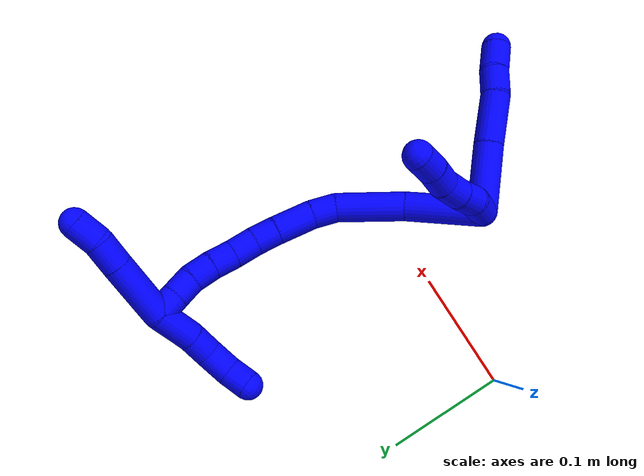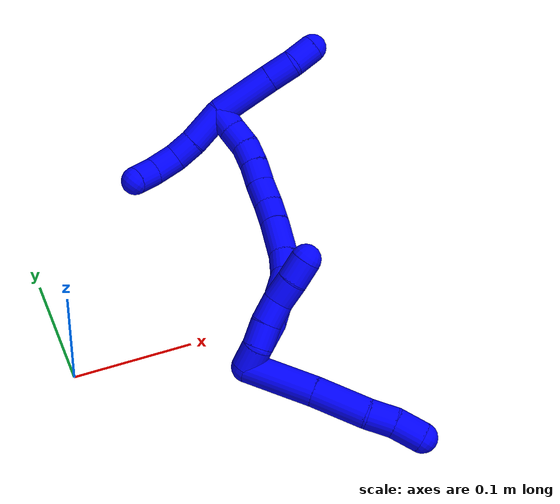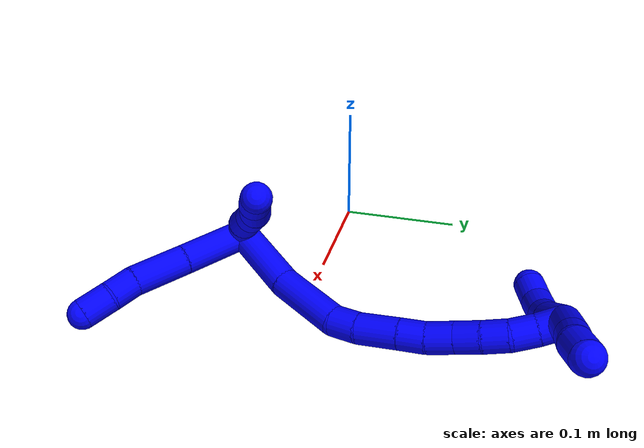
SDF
<sdf version="1.7">
 <world name="default">
  <model name="1">
   <static>0</static>
   <link name="1">
    <collision name="collision-cylinder-e_1_2_8">
     <pose>0.016412 -0.02162 0.009322 1.16372 0.608759 0.407567</pose>
     <geometry><cylinder><radius>0.0125</radius><length>0.057399</length></cylinder></geometry>
     <surface>
      <friction><ode><mu>1.16</mu><mu2>1.16</mu2><slip1>0</slip1><slip2>0</slip2></ode></friction>
      <contact><ode><kp>1e+06</kp><kd>1</kd><max_vel>0</max_vel><min_depth>0.001</min_depth></ode></contact>
     </surface>
    </collision>
    <visual name="visual-cylinder-e_1_2_8">
     <pose>0.016412 -0.02162 0.009322 1.16372 0.608759 0.407567</pose>
     <geometry><cylinder><radius>0.0125</radius><length>0.057399</length></cylinder></geometry>
     <material><ambient>0 0 1 1</ambient></material>
    </visual>
    <collision name="collision-cylinder-e_2_8_9">
     <pose>0.04574 -0.060776 0.025019 1.22207 0.605502 0.430795</pose>
     <geometry><cylinder><radius>0.0125</radius><length>0.045388</length></cylinder></geometry>
     <surface>
      <friction><ode><mu>1.16</mu><mu2>1.16</mu2><slip1>0</slip1><slip2>0</slip2></ode></friction>
      <contact><ode><kp>1e+06</kp><kd>1</kd><max_vel>0</max_vel><min_depth>0.001</min_depth></ode></contact>
     </surface>
    </collision>
    <visual name="visual-cylinder-e_2_8_9">
     <pose>0.04574 -0.060776 0.025019 1.22207 0.605502 0.430795</pose>
     <geometry><cylinder><radius>0.0125</radius><length>0.045388</length></cylinder></geometry>
     <material><ambient>0 0 1 1</ambient></material>
    </visual>
    <collision name="collision-cylinder-e_3_9_10">
     <pose>0.066463 -0.085505 0.0351 1.09515 0.767503 0.482811</pose>
     <geometry><cylinder><radius>0.0125</radius><length>0.022486</length></cylinder></geometry>
     <surface>
      <friction><ode><mu>1.16</mu><mu2>1.16</mu2><slip1>0</slip1><slip2>0</slip2></ode></friction>
      <contact><ode><kp>1e+06</kp><kd>1</kd><max_vel>0</max_vel><min_depth>0.001</min_depth></ode></contact>
     </surface>
    </collision>
    <visual name="visual-cylinder-e_3_9_10">
     <pose>0.066463 -0.085505 0.0351 1.09515 0.767503 0.482811</pose>
     <geometry><cylinder><radius>0.0125</radius><length>0.022486</length></cylinder></geometry>
     <material><ambient>0 0 1 1</ambient></material>
    </visual>
    <collision name="collision-cylinder-e_4_10_6">
     <pose>0.082904 -0.101327 0.040768 1.34711 0.773065 0.628127</pose>
     <geometry><cylinder><radius>0.0125</radius><length>0.024728</length></cylinder></geometry>
     <surface>
      <friction><ode><mu>1.16</mu><mu2>1.16</mu2><slip1>0</slip1><slip2>0</slip2></ode></friction>
      <contact><ode><kp>1e+06</kp><kd>1</kd><max_vel>0</max_vel><min_depth>0.001</min_depth></ode></contact>
     </surface>
    </collision>
    <visual name="visual-cylinder-e_4_10_6">
     <pose>0.082904 -0.101327 0.040768 1.34711 0.773065 0.628127</pose>
     <geometry><cylinder><radius>0.0125</radius><length>0.024728</length></cylinder></geometry>
     <material><ambient>0 0 1 1</ambient></material>
    </visual>
    <collision name="collision-cylinder-e_1_2_11">
     <pose>-0.002845 -0.000403 0.009578 0.042101 -0.288525 -0.006117</pose>
     <geometry><cylinder><radius>0.0125</radius><length>0.02</length></cylinder></geometry>
     <surface>
      <friction><ode><mu>1.16</mu><mu2>1.16</mu2><slip1>0</slip1><slip2>0</slip2></ode></friction>
      <contact><ode><kp>1e+06</kp><kd>1</kd><max_vel>0</max_vel><min_depth>0.001</min_depth></ode></contact>
     </surface>
    </collision>
    <visual name="visual-cylinder-e_1_2_11">
     <pose>-0.002845 -0.000403 0.009578 0.042101 -0.288525 -0.006117</pose>
     <geometry><cylinder><radius>0.0125</radius><length>0.02</length></cylinder></geometry>
     <material><ambient>0 0 1 1</ambient></material>
    </visual>
    <collision name="collision-cylinder-e_2_11_12">
     <pose>-0.007285 0.001848 0.028665 -0.272276 -0.16007 0.021973</pose>
     <geometry><cylinder><radius>0.0125</radius><length>0.02</length></cylinder></geometry>
     <surface>
      <friction><ode><mu>1.16</mu><mu2>1.16</mu2><slip1>0</slip1><slip2>0</slip2></ode></friction>
      <contact><ode><kp>1e+06</kp><kd>1</kd><max_vel>0</max_vel><min_depth>0.001</min_depth></ode></contact>
     </surface>
    </collision>
    <visual name="visual-cylinder-e_2_11_12">
     <pose>-0.007285 0.001848 0.028665 -0.272276 -0.16007 0.021973</pose>
     <geometry><cylinder><radius>0.0125</radius><length>0.02</length></cylinder></geometry>
     <material><ambient>0 0 1 1</ambient></material>
    </visual>
    <collision name="collision-cylinder-e_3_12_13">
     <pose>-0.00951 0.006184 0.048011 -0.169308 -0.063163 0.005362</pose>
     <geometry><cylinder><radius>0.0125</radius><length>0.02</length></cylinder></geometry>
     <surface>
      <friction><ode><mu>1.16</mu><mu2>1.16</mu2><slip1>0</slip1><slip2>0</slip2></ode></friction>
      <contact><ode><kp>1e+06</kp><kd>1</kd><max_vel>0</max_vel><min_depth>0.001</min_depth></ode></contact>
     </surface>
    </collision>
    <visual name="visual-cylinder-e_3_12_13">
     <pose>-0.00951 0.006184 0.048011 -0.169308 -0.063163 0.005362</pose>
     <geometry><cylinder><radius>0.0125</radius><length>0.02</length></cylinder></geometry>
     <material><ambient>0 0 1 1</ambient></material>
    </visual>
    <collision name="collision-cylinder-e_4_13_14">
     <pose>-0.011485 0.007234 0.067737 0.063818 -0.134791 -0.004309</pose>
     <geometry><cylinder><radius>0.0125</radius><length>0.02</length></cylinder></geometry>
     <surface>
      <friction><ode><mu>1.16</mu><mu2>1.16</mu2><slip1>0</slip1><slip2>0</slip2></ode></friction>
      <contact><ode><kp>1e+06</kp><kd>1</kd><max_vel>0</max_vel><min_depth>0.001</min_depth></ode></contact>
     </surface>
    </collision>
    <visual name="visual-cylinder-e_4_13_14">
     <pose>-0.011485 0.007234 0.067737 0.063818 -0.134791 -0.004309</pose>
     <geometry><cylinder><radius>0.0125</radius><length>0.02</length></cylinder></geometry>
     <material><ambient>0 0 1 1</ambient></material>
    </visual>
    <collision name="collision-cylinder-e_5_14_5">
     <pose>-0.013739 0.007001 0.087577 -0.040034 -0.091123 0.001826</pose>
     <geometry><cylinder><radius>0.0125</radius><length>0.02</length></cylinder></geometry>
     <surface>
      <friction><ode><mu>1.16</mu><mu2>1.16</mu2><slip1>0</slip1><slip2>0</slip2></ode></friction>
      <contact><ode><kp>1e+06</kp><kd>1</kd><max_vel>0</max_vel><min_depth>0.001</min_depth></ode></contact>
     </surface>
    </collision>
    <visual name="visual-cylinder-e_5_14_5">
     <pose>-0.013739 0.007001 0.087577 -0.040034 -0.091123 0.001826</pose>
     <geometry><cylinder><radius>0.0125</radius><length>0.02</length></cylinder></geometry>
     <material><ambient>0 0 1 1</ambient></material>
    </visual>
    <collision name="collision-cylinder-e_1_2_15">
     <pose>0.018682 0.020752 0.015413 -0.931985 0.625825 -0.322613</pose>
     <geometry><cylinder><radius>0.0125</radius><length>0.063788</length></cylinder></geometry>
     <surface>
      <friction><ode><mu>1.16</mu><mu2>1.16</mu2><slip1>0</slip1><slip2>0</slip2></ode></friction>
      <contact><ode><kp>1e+06</kp><kd>1</kd><max_vel>0</max_vel><min_depth>0.001</min_depth></ode></contact>
     </surface>
    </collision>
    <visual name="visual-cylinder-e_1_2_15">
     <pose>0.018682 0.020752 0.015413 -0.931985 0.625825 -0.322613</pose>
     <geometry><cylinder><radius>0.0125</radius><length>0.063788</length></cylinder></geometry>
     <material><ambient>0 0 1 1</ambient></material>
    </visual>
    <collision name="collision-cylinder-e_2_15_16">
     <pose>0.050063 0.062688 0.046645 -0.929354 0.447755 -0.227297</pose>
     <geometry><cylinder><radius>0.0125</radius><length>0.058662</length></cylinder></geometry>
     <surface>
      <friction><ode><mu>1.16</mu><mu2>1.16</mu2><slip1>0</slip1><slip2>0</slip2></ode></friction>
      <contact><ode><kp>1e+06</kp><kd>1</kd><max_vel>0</max_vel><min_depth>0.001</min_depth></ode></contact>
     </surface>
    </collision>
    <visual name="visual-cylinder-e_2_15_16">
     <pose>0.050063 0.062688 0.046645 -0.929354 0.447755 -0.227297</pose>
     <geometry><cylinder><radius>0.0125</radius><length>0.058662</length></cylinder></geometry>
     <material><ambient>0 0 1 1</ambient></material>
    </visual>
    <collision name="collision-cylinder-e_3_16_17">
     <pose>0.064281 0.093185 0.067785 -1.0518 0.140708 -0.08176</pose>
     <geometry><cylinder><radius>0.0125</radius><length>0.021663</length></cylinder></geometry>
     <surface>
      <friction><ode><mu>1.16</mu><mu2>1.16</mu2><slip1>0</slip1><slip2>0</slip2></ode></friction>
      <contact><ode><kp>1e+06</kp><kd>1</kd><max_vel>0</max_vel><min_depth>0.001</min_depth></ode></contact>
     </surface>
    </collision>
    <visual name="visual-cylinder-e_3_16_17">
     <pose>0.064281 0.093185 0.067785 -1.0518 0.140708 -0.08176</pose>
     <geometry><cylinder><radius>0.0125</radius><length>0.021663</length></cylinder></geometry>
     <material><ambient>0 0 1 1</ambient></material>
    </visual>
    <collision name="collision-cylinder-e_4_17_18">
     <pose>0.065601 0.117462 0.080258 -1.12486 -0.012003 0.007566</pose>
     <geometry><cylinder><radius>0.0125</radius><length>0.033175</length></cylinder></geometry>
     <surface>
      <friction><ode><mu>1.16</mu><mu2>1.16</mu2><slip1>0</slip1><slip2>0</slip2></ode></friction>
      <contact><ode><kp>1e+06</kp><kd>1</kd><max_vel>0</max_vel><min_depth>0.001</min_depth></ode></contact>
     </surface>
    </collision>
    <visual name="visual-cylinder-e_4_17_18">
     <pose>0.065601 0.117462 0.080258 -1.12486 -0.012003 0.007566</pose>
     <geometry><cylinder><radius>0.0125</radius><length>0.033175</length></cylinder></geometry>
     <material><ambient>0 0 1 1</ambient></material>
    </visual>
    <collision name="collision-cylinder-e_5_18_19">
     <pose>0.065372 0.142043 0.091404 -1.1773 -0.002821 0.001883</pose>
     <geometry><cylinder><radius>0.0125</radius><length>0.020826</length></cylinder></geometry>
     <surface>
      <friction><ode><mu>1.16</mu><mu2>1.16</mu2><slip1>0</slip1><slip2>0</slip2></ode></friction>
      <contact><ode><kp>1e+06</kp><kd>1</kd><max_vel>0</max_vel><min_depth>0.001</min_depth></ode></contact>
     </surface>
    </collision>
    <visual name="visual-cylinder-e_5_18_19">
     <pose>0.065372 0.142043 0.091404 -1.1773 -0.002821 0.001883</pose>
     <geometry><cylinder><radius>0.0125</radius><length>0.020826</length></cylinder></geometry>
     <material><ambient>0 0 1 1</ambient></material>
    </visual>
    <collision name="collision-cylinder-e_6_19_20">
     <pose>0.06359 0.161427 0.099667 -1.15867 -0.162989 0.106766</pose>
     <geometry><cylinder><radius>0.0125</radius><length>0.021606</length></cylinder></geometry>
     <surface>
      <friction><ode><mu>1.16</mu><mu2>1.16</mu2><slip1>0</slip1><slip2>0</slip2></ode></friction>
      <contact><ode><kp>1e+06</kp><kd>1</kd><max_vel>0</max_vel><min_depth>0.001</min_depth></ode></contact>
     </surface>
    </collision>
    <visual name="visual-cylinder-e_6_19_20">
     <pose>0.06359 0.161427 0.099667 -1.15867 -0.162989 0.106766</pose>
     <geometry><cylinder><radius>0.0125</radius><length>0.021606</length></cylinder></geometry>
     <material><ambient>0 0 1 1</ambient></material>
    </visual>
    <collision name="collision-cylinder-e_7_20_21">
     <pose>0.060268 0.180012 0.108525 -1.09098 -0.156553 0.095138</pose>
     <geometry><cylinder><radius>0.0125</radius><length>0.020125</length></cylinder></geometry>
     <surface>
      <friction><ode><mu>1.16</mu><mu2>1.16</mu2><slip1>0</slip1><slip2>0</slip2></ode></friction>
      <contact><ode><kp>1e+06</kp><kd>1</kd><max_vel>0</max_vel><min_depth>0.001</min_depth></ode></contact>
     </surface>
    </collision>
    <visual name="visual-cylinder-e_7_20_21">
     <pose>0.060268 0.180012 0.108525 -1.09098 -0.156553 0.095138</pose>
     <geometry><cylinder><radius>0.0125</radius><length>0.020125</length></cylinder></geometry>
     <material><ambient>0 0 1 1</ambient></material>
    </visual>
    <collision name="collision-cylinder-e_8_21_22">
     <pose>0.05659 0.197919 0.116836 -1.18205 -0.211513 0.142226</pose>
     <geometry><cylinder><radius>0.0125</radius><length>0.020094</length></cylinder></geometry>
     <surface>
      <friction><ode><mu>1.16</mu><mu2>1.16</mu2><slip1>0</slip1><slip2>0</slip2></ode></friction>
      <contact><ode><kp>1e+06</kp><kd>1</kd><max_vel>0</max_vel><min_depth>0.001</min_depth></ode></contact>
     </surface>
    </collision>
    <visual name="visual-cylinder-e_8_21_22">
     <pose>0.05659 0.197919 0.116836 -1.18205 -0.211513 0.142226</pose>
     <geometry><cylinder><radius>0.0125</radius><length>0.020094</length></cylinder></geometry>
     <material><ambient>0 0 1 1</ambient></material>
    </visual>
    <collision name="collision-cylinder-e_9_22_23">
     <pose>0.050852 0.216159 0.122406 -1.37163 -0.370813 0.304593</pose>
     <geometry><cylinder><radius>0.0125</radius><length>0.020029</length></cylinder></geometry>
     <surface>
      <friction><ode><mu>1.16</mu><mu2>1.16</mu2><slip1>0</slip1><slip2>0</slip2></ode></friction>
      <contact><ode><kp>1e+06</kp><kd>1</kd><max_vel>0</max_vel><min_depth>0.001</min_depth></ode></contact>
     </surface>
    </collision>
    <visual name="visual-cylinder-e_9_22_23">
     <pose>0.050852 0.216159 0.122406 -1.37163 -0.370813 0.304593</pose>
     <geometry><cylinder><radius>0.0125</radius><length>0.020029</length></cylinder></geometry>
     <material><ambient>0 0 1 1</ambient></material>
    </visual>
    <collision name="collision-cylinder-e_10_23_1">
     <pose>0.042845 0.233993 0.126646 -1.30195 -0.452333 0.347033</pose>
     <geometry><cylinder><radius>0.0125</radius><length>0.020032</length></cylinder></geometry>
     <surface>
      <friction><ode><mu>1.16</mu><mu2>1.16</mu2><slip1>0</slip1><slip2>0</slip2></ode></friction>
      <contact><ode><kp>1e+06</kp><kd>1</kd><max_vel>0</max_vel><min_depth>0.001</min_depth></ode></contact>
     </surface>
    </collision>
    <visual name="visual-cylinder-e_10_23_1">
     <pose>0.042845 0.233993 0.126646 -1.30195 -0.452333 0.347033</pose>
     <geometry><cylinder><radius>0.0125</radius><length>0.020032</length></cylinder></geometry>
     <material><ambient>0 0 1 1</ambient></material>
    </visual>
    <collision name="collision-cylinder-e_1_1_24">
     <pose>0.045434 0.237891 0.154224 0.187847 0.265343 0.025142</pose>
     <geometry><cylinder><radius>0.0125</radius><length>0.053132</length></cylinder></geometry>
     <surface>
      <friction><ode><mu>1.16</mu><mu2>1.16</mu2><slip1>0</slip1><slip2>0</slip2></ode></friction>
      <contact><ode><kp>1e+06</kp><kd>1</kd><max_vel>0</max_vel><min_depth>0.001</min_depth></ode></contact>
     </surface>
    </collision>
    <visual name="visual-cylinder-e_1_1_24">
     <pose>0.045434 0.237891 0.154224 0.187847 0.265343 0.025142</pose>
     <geometry><cylinder><radius>0.0125</radius><length>0.053132</length></cylinder></geometry>
     <material><ambient>0 0 1 1</ambient></material>
    </visual>
    <collision name="collision-cylinder-e_2_24_25">
     <pose>0.05571 0.230742 0.190642 0.20715 0.280666 0.029365</pose>
     <geometry><cylinder><radius>0.0125</radius><length>0.023892</length></cylinder></geometry>
     <surface>
      <friction><ode><mu>1.16</mu><mu2>1.16</mu2><slip1>0</slip1><slip2>0</slip2></ode></friction>
      <contact><ode><kp>1e+06</kp><kd>1</kd><max_vel>0</max_vel><min_depth>0.001</min_depth></ode></contact>
     </surface>
    </collision>
    <visual name="visual-cylinder-e_2_24_25">
     <pose>0.05571 0.230742 0.190642 0.20715 0.280666 0.029365</pose>
     <geometry><cylinder><radius>0.0125</radius><length>0.023892</length></cylinder></geometry>
     <material><ambient>0 0 1 1</ambient></material>
    </visual>
    <collision name="collision-cylinder-e_3_25_4">
     <pose>0.063764 0.229171 0.212308 -0.07552 0.425783 -0.016332</pose>
     <geometry><cylinder><radius>0.0125</radius><length>0.022977</length></cylinder></geometry>
     <surface>
      <friction><ode><mu>1.16</mu><mu2>1.16</mu2><slip1>0</slip1><slip2>0</slip2></ode></friction>
      <contact><ode><kp>1e+06</kp><kd>1</kd><max_vel>0</max_vel><min_depth>0.001</min_depth></ode></contact>
     </surface>
    </collision>
    <visual name="visual-cylinder-e_3_25_4">
     <pose>0.063764 0.229171 0.212308 -0.07552 0.425783 -0.016332</pose>
     <geometry><cylinder><radius>0.0125</radius><length>0.022977</length></cylinder></geometry>
     <material><ambient>0 0 1 1</ambient></material>
    </visual>
    <collision name="collision-cylinder-e_1_1_26">
     <pose>0.036109 0.24201 0.111768 3.10296 -0.13565 -2.58748</pose>
     <geometry><cylinder><radius>0.0125</radius><length>0.034888</length></cylinder></geometry>
     <surface>
      <friction><ode><mu>1.16</mu><mu2>1.16</mu2><slip1>0</slip1><slip2>0</slip2></ode></friction>
      <contact><ode><kp>1e+06</kp><kd>1</kd><max_vel>0</max_vel><min_depth>0.001</min_depth></ode></contact>
     </surface>
    </collision>
    <visual name="visual-cylinder-e_1_1_26">
     <pose>0.036109 0.24201 0.111768 3.10296 -0.13565 -2.58748</pose>
     <geometry><cylinder><radius>0.0125</radius><length>0.034888</length></cylinder></geometry>
     <material><ambient>0 0 1 1</ambient></material>
    </visual>
    <collision name="collision-cylinder-e_2_26_27">
     <pose>0.031516 0.242135 0.084342 -3.06377 -0.215872 2.45171</pose>
     <geometry><cylinder><radius>0.0125</radius><length>0.020855</length></cylinder></geometry>
     <surface>
      <friction><ode><mu>1.16</mu><mu2>1.16</mu2><slip1>0</slip1><slip2>0</slip2></ode></friction>
      <contact><ode><kp>1e+06</kp><kd>1</kd><max_vel>0</max_vel><min_depth>0.001</min_depth></ode></contact>
     </surface>
    </collision>
    <visual name="visual-cylinder-e_2_26_27">
     <pose>0.031516 0.242135 0.084342 -3.06377 -0.215872 2.45171</pose>
     <geometry><cylinder><radius>0.0125</radius><length>0.020855</length></cylinder></geometry>
     <material><ambient>0 0 1 1</ambient></material>
    </visual>
    <collision name="collision-cylinder-e_3_27_28">
     <pose>0.023443 0.242539 0.063792 3.10431 -0.511513 -2.99923</pose>
     <geometry><cylinder><radius>0.0125</radius><length>0.02386</length></cylinder></geometry>
     <surface>
      <friction><ode><mu>1.16</mu><mu2>1.16</mu2><slip1>0</slip1><slip2>0</slip2></ode></friction>
      <contact><ode><kp>1e+06</kp><kd>1</kd><max_vel>0</max_vel><min_depth>0.001</min_depth></ode></contact>
     </surface>
    </collision>
    <visual name="visual-cylinder-e_3_27_28">
     <pose>0.023443 0.242539 0.063792 3.10431 -0.511513 -2.99923</pose>
     <geometry><cylinder><radius>0.0125</radius><length>0.02386</length></cylinder></geometry>
     <material><ambient>0 0 1 1</ambient></material>
    </visual>
    <collision name="collision-cylinder-e_4_28_3">
     <pose>0.010447 0.240072 0.046433 2.8514 -0.777742 -2.45646</pose>
     <geometry><cylinder><radius>0.0125</radius><length>0.020397</length></cylinder></geometry>
     <surface>
      <friction><ode><mu>1.16</mu><mu2>1.16</mu2><slip1>0</slip1><slip2>0</slip2></ode></friction>
      <contact><ode><kp>1e+06</kp><kd>1</kd><max_vel>0</max_vel><min_depth>0.001</min_depth></ode></contact>
     </surface>
    </collision>
    <visual name="visual-cylinder-e_4_28_3">
     <pose>0.010447 0.240072 0.046433 2.8514 -0.777742 -2.45646</pose>
     <geometry><cylinder><radius>0.0125</radius><length>0.020397</length></cylinder></geometry>
     <material><ambient>0 0 1 1</ambient></material>
    </visual>
    <collision name="collision-sphere-3">
     <pose>0.003291 0.237993 0.039471 0 -0 0</pose>
     <geometry><sphere><radius>0.0125</radius></sphere></geometry>
     <surface>
      <friction><ode><mu>1.16</mu><mu2>1.16</mu2><slip1>0</slip1><slip2>0</slip2></ode></friction>
      <contact><ode><kp>1e+06</kp><kd>1</kd><max_vel>0</max_vel><min_depth>0.001</min_depth></ode></contact>
     </surface>
    </collision>
    <visual name="visual-sphere-3">
     <pose>0.003291 0.237993 0.039471 0 -0 0</pose>
     <geometry><sphere><radius>0.0125</radius></sphere></geometry>
     <material><ambient>0 0 1 1</ambient></material>
    </visual>
    <collision name="collision-sphere-28">
     <pose>0.017603 0.242151 0.053396 0 -0 0</pose>
     <geometry><sphere><radius>0.0125</radius></sphere></geometry>
     <surface>
      <friction><ode><mu>1.16</mu><mu2>1.16</mu2><slip1>0</slip1><slip2>0</slip2></ode></friction>
      <contact><ode><kp>1e+06</kp><kd>1</kd><max_vel>0</max_vel><min_depth>0.001</min_depth></ode></contact>
     </surface>
    </collision>
    <visual name="visual-sphere-28">
     <pose>0.017603 0.242151 0.053396 0 -0 0</pose>
     <geometry><sphere><radius>0.0125</radius></sphere></geometry>
     <material><ambient>0 0 1 1</ambient></material>
    </visual>
    <collision name="collision-sphere-27">
     <pose>0.029282 0.242927 0.074188 0 -0 0</pose>
     <geometry><sphere><radius>0.0125</radius></sphere></geometry>
     <surface>
      <friction><ode><mu>1.16</mu><mu2>1.16</mu2><slip1>0</slip1><slip2>0</slip2></ode></friction>
      <contact><ode><kp>1e+06</kp><kd>1</kd><max_vel>0</max_vel><min_depth>0.001</min_depth></ode></contact>
     </surface>
    </collision>
    <visual name="visual-sphere-27">
     <pose>0.029282 0.242927 0.074188 0 -0 0</pose>
     <geometry><sphere><radius>0.0125</radius></sphere></geometry>
     <material><ambient>0 0 1 1</ambient></material>
    </visual>
    <collision name="collision-sphere-26">
     <pose>0.03375 0.241343 0.094497 0 -0 0</pose>
     <geometry><sphere><radius>0.0125</radius></sphere></geometry>
     <surface>
      <friction><ode><mu>1.16</mu><mu2>1.16</mu2><slip1>0</slip1><slip2>0</slip2></ode></friction>
      <contact><ode><kp>1e+06</kp><kd>1</kd><max_vel>0</max_vel><min_depth>0.001</min_depth></ode></contact>
     </surface>
    </collision>
    <visual name="visual-sphere-26">
     <pose>0.03375 0.241343 0.094497 0 -0 0</pose>
     <geometry><sphere><radius>0.0125</radius></sphere></geometry>
     <material><ambient>0 0 1 1</ambient></material>
    </visual>
    <collision name="collision-sphere-4">
     <pose>0.068509 0.22996 0.222741 0 -0 0</pose>
     <geometry><sphere><radius>0.0125</radius></sphere></geometry>
     <surface>
      <friction><ode><mu>1.16</mu><mu2>1.16</mu2><slip1>0</slip1><slip2>0</slip2></ode></friction>
      <contact><ode><kp>1e+06</kp><kd>1</kd><max_vel>0</max_vel><min_depth>0.001</min_depth></ode></contact>
     </surface>
    </collision>
    <visual name="visual-sphere-4">
     <pose>0.068509 0.22996 0.222741 0 -0 0</pose>
     <geometry><sphere><radius>0.0125</radius></sphere></geometry>
     <material><ambient>0 0 1 1</ambient></material>
    </visual>
    <collision name="collision-sphere-25">
     <pose>0.059019 0.228382 0.201875 0 -0 0</pose>
     <geometry><sphere><radius>0.0125</radius></sphere></geometry>
     <surface>
      <friction><ode><mu>1.16</mu><mu2>1.16</mu2><slip1>0</slip1><slip2>0</slip2></ode></friction>
      <contact><ode><kp>1e+06</kp><kd>1</kd><max_vel>0</max_vel><min_depth>0.001</min_depth></ode></contact>
     </surface>
    </collision>
    <visual name="visual-sphere-25">
     <pose>0.059019 0.228382 0.201875 0 -0 0</pose>
     <geometry><sphere><radius>0.0125</radius></sphere></geometry>
     <material><ambient>0 0 1 1</ambient></material>
    </visual>
    <collision name="collision-sphere-24">
     <pose>0.052401 0.233103 0.179409 0 -0 0</pose>
     <geometry><sphere><radius>0.0125</radius></sphere></geometry>
     <surface>
      <friction><ode><mu>1.16</mu><mu2>1.16</mu2><slip1>0</slip1><slip2>0</slip2></ode></friction>
      <contact><ode><kp>1e+06</kp><kd>1</kd><max_vel>0</max_vel><min_depth>0.001</min_depth></ode></contact>
     </surface>
    </collision>
    <visual name="visual-sphere-24">
     <pose>0.052401 0.233103 0.179409 0 -0 0</pose>
     <geometry><sphere><radius>0.0125</radius></sphere></geometry>
     <material><ambient>0 0 1 1</ambient></material>
    </visual>
    <collision name="collision-sphere-1">
     <pose>0.038468 0.242678 0.129039 0 -0 0</pose>
     <geometry><sphere><radius>0.0125</radius></sphere></geometry>
     <surface>
      <friction><ode><mu>1.16</mu><mu2>1.16</mu2><slip1>0</slip1><slip2>0</slip2></ode></friction>
      <contact><ode><kp>1e+06</kp><kd>1</kd><max_vel>0</max_vel><min_depth>0.001</min_depth></ode></contact>
     </surface>
    </collision>
    <visual name="visual-sphere-1">
     <pose>0.038468 0.242678 0.129039 0 -0 0</pose>
     <geometry><sphere><radius>0.0125</radius></sphere></geometry>
     <material><ambient>0 0 1 1</ambient></material>
    </visual>
    <collision name="collision-sphere-23">
     <pose>0.047223 0.225308 0.124253 0 -0 0</pose>
     <geometry><sphere><radius>0.0125</radius></sphere></geometry>
     <surface>
      <friction><ode><mu>1.16</mu><mu2>1.16</mu2><slip1>0</slip1><slip2>0</slip2></ode></friction>
      <contact><ode><kp>1e+06</kp><kd>1</kd><max_vel>0</max_vel><min_depth>0.001</min_depth></ode></contact>
     </surface>
    </collision>
    <visual name="visual-sphere-23">
     <pose>0.047223 0.225308 0.124253 0 -0 0</pose>
     <geometry><sphere><radius>0.0125</radius></sphere></geometry>
     <material><ambient>0 0 1 1</ambient></material>
    </visual>
    <collision name="collision-sphere-22">
     <pose>0.054481 0.207009 0.120559 0 -0 0</pose>
     <geometry><sphere><radius>0.0125</radius></sphere></geometry>
     <surface>
      <friction><ode><mu>1.16</mu><mu2>1.16</mu2><slip1>0</slip1><slip2>0</slip2></ode></friction>
      <contact><ode><kp>1e+06</kp><kd>1</kd><max_vel>0</max_vel><min_depth>0.001</min_depth></ode></contact>
     </surface>
    </collision>
    <visual name="visual-sphere-22">
     <pose>0.054481 0.207009 0.120559 0 -0 0</pose>
     <geometry><sphere><radius>0.0125</radius></sphere></geometry>
     <material><ambient>0 0 1 1</ambient></material>
    </visual>
    <collision name="collision-sphere-21">
     <pose>0.058699 0.188829 0.113113 0 -0 0</pose>
     <geometry><sphere><radius>0.0125</radius></sphere></geometry>
     <surface>
      <friction><ode><mu>1.16</mu><mu2>1.16</mu2><slip1>0</slip1><slip2>0</slip2></ode></friction>
      <contact><ode><kp>1e+06</kp><kd>1</kd><max_vel>0</max_vel><min_depth>0.001</min_depth></ode></contact>
     </surface>
    </collision>
    <visual name="visual-sphere-21">
     <pose>0.058699 0.188829 0.113113 0 -0 0</pose>
     <geometry><sphere><radius>0.0125</radius></sphere></geometry>
     <material><ambient>0 0 1 1</ambient></material>
    </visual>
    <collision name="collision-sphere-11">
     <pose>-0.005691 -0.000807 0.019156 0 -0 0</pose>
     <geometry><sphere><radius>0.0125</radius></sphere></geometry>
     <surface>
      <friction><ode><mu>1.16</mu><mu2>1.16</mu2><slip1>0</slip1><slip2>0</slip2></ode></friction>
      <contact><ode><kp>1e+06</kp><kd>1</kd><max_vel>0</max_vel><min_depth>0.001</min_depth></ode></contact>
     </surface>
    </collision>
    <visual name="visual-sphere-11">
     <pose>-0.005691 -0.000807 0.019156 0 -0 0</pose>
     <geometry><sphere><radius>0.0125</radius></sphere></geometry>
     <material><ambient>0 0 1 1</ambient></material>
    </visual>
    <collision name="collision-sphere-6">
     <pose>0.091538 -0.109956 0.042731 0 -0 0</pose>
     <geometry><sphere><radius>0.0125</radius></sphere></geometry>
     <surface>
      <friction><ode><mu>1.16</mu><mu2>1.16</mu2><slip1>0</slip1><slip2>0</slip2></ode></friction>
      <contact><ode><kp>1e+06</kp><kd>1</kd><max_vel>0</max_vel><min_depth>0.001</min_depth></ode></contact>
     </surface>
    </collision>
    <visual name="visual-sphere-6">
     <pose>0.091538 -0.109956 0.042731 0 -0 0</pose>
     <geometry><sphere><radius>0.0125</radius></sphere></geometry>
     <material><ambient>0 0 1 1</ambient></material>
    </visual>
    <collision name="collision-sphere-10">
     <pose>0.07427 -0.092697 0.038805 0 -0 0</pose>
     <geometry><sphere><radius>0.0125</radius></sphere></geometry>
     <surface>
      <friction><ode><mu>1.16</mu><mu2>1.16</mu2><slip1>0</slip1><slip2>0</slip2></ode></friction>
      <contact><ode><kp>1e+06</kp><kd>1</kd><max_vel>0</max_vel><min_depth>0.001</min_depth></ode></contact>
     </surface>
    </collision>
    <visual name="visual-sphere-10">
     <pose>0.07427 -0.092697 0.038805 0 -0 0</pose>
     <geometry><sphere><radius>0.0125</radius></sphere></geometry>
     <material><ambient>0 0 1 1</ambient></material>
    </visual>
    <collision name="collision-sphere-9">
     <pose>0.058657 -0.078312 0.031395 0 -0 0</pose>
     <geometry><sphere><radius>0.0125</radius></sphere></geometry>
     <surface>
      <friction><ode><mu>1.16</mu><mu2>1.16</mu2><slip1>0</slip1><slip2>0</slip2></ode></friction>
      <contact><ode><kp>1e+06</kp><kd>1</kd><max_vel>0</max_vel><min_depth>0.001</min_depth></ode></contact>
     </surface>
    </collision>
    <visual name="visual-sphere-9">
     <pose>0.058657 -0.078312 0.031395 0 -0 0</pose>
     <geometry><sphere><radius>0.0125</radius></sphere></geometry>
     <material><ambient>0 0 1 1</ambient></material>
    </visual>
    <collision name="collision-sphere-2">
     <geometry><sphere><radius>0.0125</radius></sphere></geometry>
     <surface>
      <friction><ode><mu>1.16</mu><mu2>1.16</mu2><slip1>0</slip1><slip2>0</slip2></ode></friction>
      <contact><ode><kp>1e+06</kp><kd>1</kd><max_vel>0</max_vel><min_depth>0.001</min_depth></ode></contact>
     </surface>
    </collision>
    <visual name="visual-sphere-2">
     <geometry><sphere><radius>0.0125</radius></sphere></geometry>
     <material><ambient>0 0 1 1</ambient></material>
    </visual>
    <collision name="collision-sphere-19">
     <pose>0.065343 0.15166 0.095397 0 -0 0</pose>
     <geometry><sphere><radius>0.0125</radius></sphere></geometry>
     <surface>
      <friction><ode><mu>1.16</mu><mu2>1.16</mu2><slip1>0</slip1><slip2>0</slip2></ode></friction>
      <contact><ode><kp>1e+06</kp><kd>1</kd><max_vel>0</max_vel><min_depth>0.001</min_depth></ode></contact>
     </surface>
    </collision>
    <visual name="visual-sphere-19">
     <pose>0.065343 0.15166 0.095397 0 -0 0</pose>
     <geometry><sphere><radius>0.0125</radius></sphere></geometry>
     <material><ambient>0 0 1 1</ambient></material>
    </visual>
    <collision name="collision-sphere-8">
     <pose>0.032823 -0.04324 0.018643 0 -0 0</pose>
     <geometry><sphere><radius>0.0125</radius></sphere></geometry>
     <surface>
      <friction><ode><mu>1.16</mu><mu2>1.16</mu2><slip1>0</slip1><slip2>0</slip2></ode></friction>
      <contact><ode><kp>1e+06</kp><kd>1</kd><max_vel>0</max_vel><min_depth>0.001</min_depth></ode></contact>
     </surface>
    </collision>
    <visual name="visual-sphere-8">
     <pose>0.032823 -0.04324 0.018643 0 -0 0</pose>
     <geometry><sphere><radius>0.0125</radius></sphere></geometry>
     <material><ambient>0 0 1 1</ambient></material>
    </visual>
    <collision name="collision-sphere-12">
     <pose>-0.008879 0.004503 0.038173 0 -0 0</pose>
     <geometry><sphere><radius>0.0125</radius></sphere></geometry>
     <surface>
      <friction><ode><mu>1.16</mu><mu2>1.16</mu2><slip1>0</slip1><slip2>0</slip2></ode></friction>
      <contact><ode><kp>1e+06</kp><kd>1</kd><max_vel>0</max_vel><min_depth>0.001</min_depth></ode></contact>
     </surface>
    </collision>
    <visual name="visual-sphere-12">
     <pose>-0.008879 0.004503 0.038173 0 -0 0</pose>
     <geometry><sphere><radius>0.0125</radius></sphere></geometry>
     <material><ambient>0 0 1 1</ambient></material>
    </visual>
    <collision name="collision-sphere-13">
     <pose>-0.010141 0.007866 0.057848 0 -0 0</pose>
     <geometry><sphere><radius>0.0125</radius></sphere></geometry>
     <surface>
      <friction><ode><mu>1.16</mu><mu2>1.16</mu2><slip1>0</slip1><slip2>0</slip2></ode></friction>
      <contact><ode><kp>1e+06</kp><kd>1</kd><max_vel>0</max_vel><min_depth>0.001</min_depth></ode></contact>
     </surface>
    </collision>
    <visual name="visual-sphere-13">
     <pose>-0.010141 0.007866 0.057848 0 -0 0</pose>
     <geometry><sphere><radius>0.0125</radius></sphere></geometry>
     <material><ambient>0 0 1 1</ambient></material>
    </visual>
    <collision name="collision-sphere-14">
     <pose>-0.012829 0.006602 0.077626 0 -0 0</pose>
     <geometry><sphere><radius>0.0125</radius></sphere></geometry>
     <surface>
      <friction><ode><mu>1.16</mu><mu2>1.16</mu2><slip1>0</slip1><slip2>0</slip2></ode></friction>
      <contact><ode><kp>1e+06</kp><kd>1</kd><max_vel>0</max_vel><min_depth>0.001</min_depth></ode></contact>
     </surface>
    </collision>
    <visual name="visual-sphere-14">
     <pose>-0.012829 0.006602 0.077626 0 -0 0</pose>
     <geometry><sphere><radius>0.0125</radius></sphere></geometry>
     <material><ambient>0 0 1 1</ambient></material>
    </visual>
    <collision name="collision-sphere-5">
     <pose>-0.014649 0.007399 0.097527 0 -0 0</pose>
     <geometry><sphere><radius>0.0125</radius></sphere></geometry>
     <surface>
      <friction><ode><mu>1.16</mu><mu2>1.16</mu2><slip1>0</slip1><slip2>0</slip2></ode></friction>
      <contact><ode><kp>1e+06</kp><kd>1</kd><max_vel>0</max_vel><min_depth>0.001</min_depth></ode></contact>
     </surface>
    </collision>
    <visual name="visual-sphere-5">
     <pose>-0.014649 0.007399 0.097527 0 -0 0</pose>
     <geometry><sphere><radius>0.0125</radius></sphere></geometry>
     <material><ambient>0 0 1 1</ambient></material>
    </visual>
    <collision name="collision-sphere-15">
     <pose>0.037365 0.041504 0.030825 0 -0 0</pose>
     <geometry><sphere><radius>0.0125</radius></sphere></geometry>
     <surface>
      <friction><ode><mu>1.16</mu><mu2>1.16</mu2><slip1>0</slip1><slip2>0</slip2></ode></friction>
      <contact><ode><kp>1e+06</kp><kd>1</kd><max_vel>0</max_vel><min_depth>0.001</min_depth></ode></contact>
     </surface>
    </collision>
    <visual name="visual-sphere-15">
     <pose>0.037365 0.041504 0.030825 0 -0 0</pose>
     <geometry><sphere><radius>0.0125</radius></sphere></geometry>
     <material><ambient>0 0 1 1</ambient></material>
    </visual>
    <collision name="collision-sphere-16">
     <pose>0.062762 0.083872 0.062465 0 -0 0</pose>
     <geometry><sphere><radius>0.0125</radius></sphere></geometry>
     <surface>
      <friction><ode><mu>1.16</mu><mu2>1.16</mu2><slip1>0</slip1><slip2>0</slip2></ode></friction>
      <contact><ode><kp>1e+06</kp><kd>1</kd><max_vel>0</max_vel><min_depth>0.001</min_depth></ode></contact>
     </surface>
    </collision>
    <visual name="visual-sphere-16">
     <pose>0.062762 0.083872 0.062465 0 -0 0</pose>
     <geometry><sphere><radius>0.0125</radius></sphere></geometry>
     <material><ambient>0 0 1 1</ambient></material>
    </visual>
    <collision name="collision-sphere-17">
     <pose>0.0658 0.102497 0.073104 0 -0 0</pose>
     <geometry><sphere><radius>0.0125</radius></sphere></geometry>
     <surface>
      <friction><ode><mu>1.16</mu><mu2>1.16</mu2><slip1>0</slip1><slip2>0</slip2></ode></friction>
      <contact><ode><kp>1e+06</kp><kd>1</kd><max_vel>0</max_vel><min_depth>0.001</min_depth></ode></contact>
     </surface>
    </collision>
    <visual name="visual-sphere-17">
     <pose>0.0658 0.102497 0.073104 0 -0 0</pose>
     <geometry><sphere><radius>0.0125</radius></sphere></geometry>
     <material><ambient>0 0 1 1</ambient></material>
    </visual>
    <collision name="collision-sphere-18">
     <pose>0.065402 0.132426 0.087412 0 -0 0</pose>
     <geometry><sphere><radius>0.0125</radius></sphere></geometry>
     <surface>
      <friction><ode><mu>1.16</mu><mu2>1.16</mu2><slip1>0</slip1><slip2>0</slip2></ode></friction>
      <contact><ode><kp>1e+06</kp><kd>1</kd><max_vel>0</max_vel><min_depth>0.001</min_depth></ode></contact>
     </surface>
    </collision>
    <visual name="visual-sphere-18">
     <pose>0.065402 0.132426 0.087412 0 -0 0</pose>
     <geometry><sphere><radius>0.0125</radius></sphere></geometry>
     <material><ambient>0 0 1 1</ambient></material>
    </visual>
    <collision name="collision-sphere-20">
     <pose>0.061837 0.171195 0.103937 0 -0 0</pose>
     <geometry><sphere><radius>0.0125</radius></sphere></geometry>
     <surface>
      <friction><ode><mu>1.16</mu><mu2>1.16</mu2><slip1>0</slip1><slip2>0</slip2></ode></friction>
      <contact><ode><kp>1e+06</kp><kd>1</kd><max_vel>0</max_vel><min_depth>0.001</min_depth></ode></contact>
     </surface>
    </collision>
    <visual name="visual-sphere-20">
     <pose>0.061837 0.171195 0.103937 0 -0 0</pose>
     <geometry><sphere><radius>0.0125</radius></sphere></geometry>
     <material><ambient>0 0 1 1</ambient></material>
    </visual>
    <inertial>
     <pose>0.037633 0.098111 0.073976 0 -0 0</pose>
     <mass>0.75</mass>
     <inertia><ixx>9.8e-05</ixx><ixy>0</ixy><ixz>0</ixz><iyy>9.8e-05</iyy><iyz>0</iyz><izz>-3.5e-05</izz></inertia>
    </inertial>
   </link>
   <pose>0.125448 -0.06348 0.036158 -0.286843 0.870461 -0.021749</pose>
  </model>
 </world>
</sdf>
